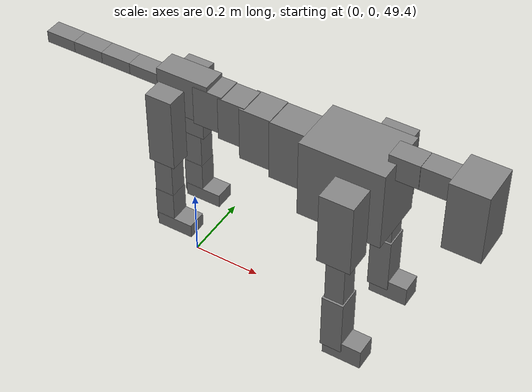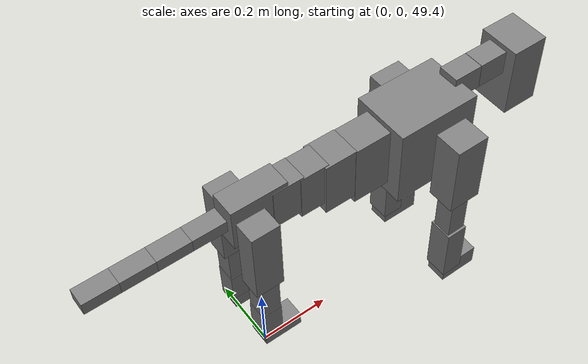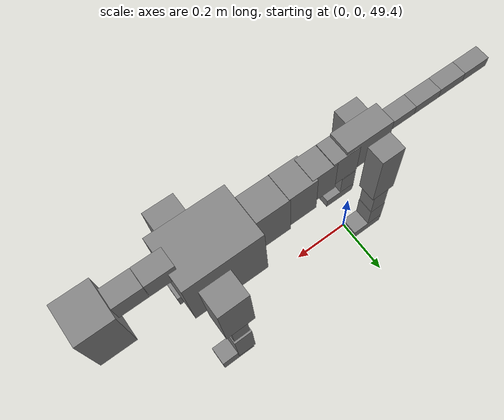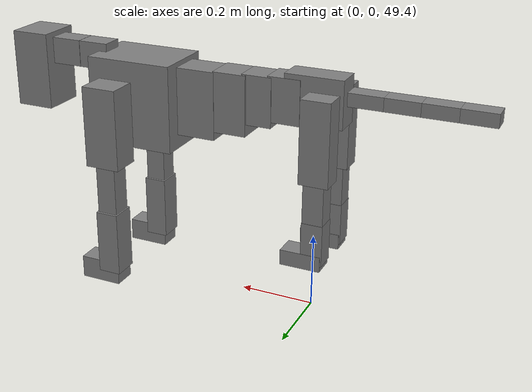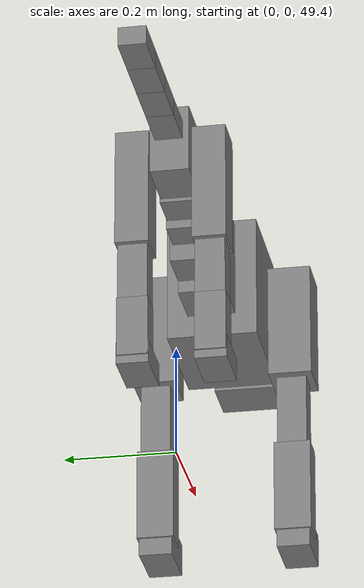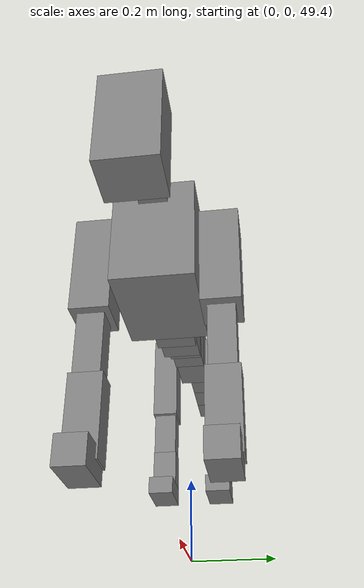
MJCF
<mujoco model="dog">

    <default>
        <joint armature="0.02" stiffness="1" damping="0.2" limited="true"/>
        <geom condim="3" friction="1 0.05 0.05" margin="0.01"/>
        <motor ctrllimited="true" ctrlrange="-1.0 1.0" forcelimited="true" gear="50"/>
    </default>

    <compiler inertiafromgeom="true" angle="radian"/>

    <option timestep="0.016" iterations="50" tolerance="1e-10" solver="Newton" jacobian="dense" cone="pyramidal"/>

    <size nconmax="20000" njmax="60000" nstack="5000000"/>
    <visual>
        <map force="0.1" zfar="30"/>
        <rgba haze="0.15 0.25 0.35 1"/>
        <quality shadowsize="2048"/>
        <global offwidth="800" offheight="800"/>
    </visual>

    <asset>
        <texture type="skybox" builtin="gradient" rgb1="0.3 0.5 0.7" rgb2="0 0 0" width="512" height="512"/>
        <texture name="texplane" type="2d" builtin="checker" rgb1=".2 .3 .4" rgb2=".1 0.15 0.2" width="512" height="512"
                 mark="cross" markrgb=".8 .8 .8"/>
        <texture name="texgeom" type="cube" builtin="flat" mark="cross" width="127" height="1278" rgb1="0.8 0.6 0.4"
                 rgb2="0.8 0.6 0.4" markrgb="1 1 1" random="0.01"/>

        <material name="matplane" reflectance="0.3" texture="texplane" texrepeat="1 1" texuniform="true"/>
        <material name="matgeom" texture="texgeom" texuniform="true" rgba="0.8 0.6 .4 1"/>
    </asset>

    <worldbody>
        <geom name="floor" pos="0 0 0" size="0 0 .25" type="plane" material="matplane" condim="3"/>

        <light directional="false" diffuse=".2 .2 .2" specular="0 0 0" pos="0 0 5" dir="0 0 -1" castshadow="false"/>
        <light mode="targetbodycom" target="torso" directional="false" diffuse=".8 .8 .8" specular="0.3 0.3 0.3"
               pos="0 0 4.0" dir="0 0 -1"/>

        <body name="root" pos="0 0 50">
            <freejoint name="root_1"/>
            <geom type="box" pos="0 0 -0.02" size="0.0774  0.0358  0.063" density="2030"/>

            <body name="spine1" pos="0.054 0 0">
                <joint name="spine1_y" axis="0 1 0" range="0 0.7" limited="true"/>
                <geom type="box" pos="0.02375 0 -0.03" size="0.04375  0.0375  0.05985" density="2030"/>

                <body name="spine2" pos="0.0612 0 0">
                    <joint name="spine2_y" axis="0 1 0" range="-0.15 0.15" limited="true"/>
                    <geom type="box" pos="0.03555  0  -0.04" size="0.04055  0.039  0.06615" density="2030"/>

                    <body name="spine3" pos="0.0730 0 0">
                        <joint name="spine3_y" axis="0 1 0" range="-0.15 0.15" limited="true"/>
                        <geom type="box" pos="0.03555  0  -0.057" size="0.04555  0.0445  0.081" density="2030"/>

                        <body name="spine4" pos="0.0780 0 0">
                            <joint name="spine4_y" axis="0 1 0" range="-0.15 0.15" limited="true"/>
                            <geom type="box" pos="0.05265  0  -0.07" size="0.05265  0.045  0.09135" density="2030"/>

                            <body name="torso" pos="0.1082 0 0">
                                <joint name="torso_y" axis="0 1 0" range="-0.15 0.15" limited="true"/>
                                <geom type="box" pos="0.11925  0  -0.085" size="0.11925  0.085  0.11745"
                                      density="2030"/>

                                <body name="neck1" pos="0.2160  0   0.0180">
                                    <joint name="neck1_y" axis="0 1 0" range="-1.2  -1" limited="true"/>
                                    <geom type="box" pos="0.0423  0  0" size="0.0423  0.03  0.036" density="2325"/>

                                    <body name="neck2" pos="0.0853  0  0">
                                        <joint name="neck2_y" axis="0 1 0" range="0.1  0" limited="true"/>
                                        <geom type="box" pos="0.0423  0  0" size="0.0423  0.03  0.036" density="2325"/>

                                        <body name="head" pos="0.0853  0  0">
                                            <joint name="head_y" axis="0 1 0" range="-0.3  -0.2" limited="true"/>
                                            <geom type="box" pos="0.0531  0  -0.055" size="0.0531  0.06  0.1044"
                                                  density="4030"/>

                                        </body>
                                    </body>
                                </body>

                                <body name="front_shoulder" pos="0.156  0   -0.0480">
                                    <joint name="front_shoulder_y" axis="0 1 0" range="-1 1.5" limited="true"/>
                                    <geom type="box" pos="0 0.13 -0.0827" size="0.0476  0.0407  0.1094" density="1158"/>
                                    <geom type="box" pos="0 -0.13 -0.0827" size="0.0476  0.0407  0.1094"
                                          density="1158"/>

                                    <body name="front_elbow" pos="0  0  -0.1654">
                                        <joint name="front_elbow_y" axis="0 1 0" range="-2 0" limited="true"/>
                                        <geom type="box" pos="0 0.13 -0.0868" size="0.0274  0.0280  0.0868"
                                              density="1081"/>
                                        <geom type="box" pos="0 -0.13 -0.0868" size="0.0274  0.0280  0.0868"
                                              density="1081"/>

                                        <body name="front_wrist" pos="0  0  -0.1736">
                                            <joint name="front_wrist_y" axis="0 1 0" range="-0.2 0" limited="true"/>
                                            <geom type="box" pos="0 0.13 -0.0744" size="0.0311  0.0345  0.0875"
                                                  density="1664"/>
                                            <geom type="box" pos="0 -0.13 -0.0744" size="0.0311  0.0345  0.0875"
                                                  density="1664"/>

                                            <body name="front_finger_end" pos="0  0  -0.1488">
                                                <joint name="front_finger_y" axis="0 1 0" range="-0.4 1"
                                                       limited="true"/>
                                                <geom type="box" pos="0.0309  0.13  -0.0157"
                                                      size="0.0566  0.0309  0.0307" density="1515"/>
                                                <geom type="box" pos="0.0309  -0.13  -0.0157"
                                                      size="0.0566  0.0309  0.0307" density="1515"/>

                                            </body>

                                        </body>
                                    </body>
                                </body>

                            </body>
                        </body>
                    </body>
                </body>
            </body>

            <body name="back_hip" pos="-0.03 0 -0.018">
                <joint name="back_hip_y" axis="0 1 0" range="-1.5 0.3" limited="true"/>
                <geom type="box" pos="0 0.07 -0.0869" size="0.0390  0.0306  0.1097" density="1154"/>
                <geom type="box" pos="0 -0.07 -0.0869" size="0.0390  0.0306  0.1097" density="1154"/>

                <body name="back_knee" pos="0  0  -0.1738">
                    <joint name="back_knee_y" axis="0 1 0" range="0 2.8" limited="true"/>
                    <geom type="box" pos="0 0.07 -0.0689" size="0.0273  0.0270  0.0845" density="1227"/>
                    <geom type="box" pos="0 -0.07 -0.0689" size="0.0273  0.0270  0.0845" density="1227"/>

                    <body name="back_ankle" pos="0  0  -0.1378">
                        <joint name="back_ankle_y" axis="0 1 0" range="-2.2 0" limited="true"/>
                        <geom type="box" pos="0 0.07 -0.0447" size="0.0282  0.0282  0.0559" density="1284"/>
                        <geom type="box" pos="0 -0.07 -0.0447" size="0.0282  0.0282  0.0559" density="1284"/>

                        <body name="back_toe_end" pos="0  0  -0.0894">
                            <joint name="back_toe_y" axis="0 1 0" range="-0.4 1" limited="true"/>
                            <geom type="box" pos="0.0293  0.07  -0.0057" size="0.0537  0.0293  0.0207" density="1515"/>
                            <geom type="box" pos="0.0293  -0.07  -0.0057" size="0.0537  0.0293  0.0207" density="1515"/>

                        </body>
                    </body>
                </body>
            </body>

            <body name="tail1" pos="-0.074 0 -0.006">
                <joint name="tail1_y" axis="0 1 0" range="-0.2 0.2" limited="true"/>
                <geom type="box" pos="-0.0536  0  0" size="0.045  0.025  0.0175" density="1587"/>

                <body name="tail2" pos="-0.09 0 0">
                    <joint name="tail2_y" axis="0 1 0" range="-0.2 0.2" limited="true"/>
                    <geom type="box" pos="-0.0536  0  0" size="0.045  0.025  0.0175" density="1587"/>

                    <body name="tail3" pos="-0.09 0 0">
                        <joint name="tail3_y" axis="0 1 0" range="-0.2 0.2" limited="true"/>
                        <geom type="box" pos="-0.0536  0  0" size="0.045  0.025  0.0175" density="1587"/>

                        <body name="tail4" pos="-0.09 0 0">
                            <joint name="tail4_y" axis="0 1 0" range="-0.2 0.2" limited="true"/>
                            <geom type="box" pos="-0.0536  0  0" size="0.045  0.025  0.0175" density="1587"/>

                        </body>
                    </body>
                </body>
            </body>
        </body>
    </worldbody>

    <actuator>
        <motor joint="spine1_y" forcerange="-150 150     "/>
        <motor joint="spine2_y" forcerange="-150 150     "/>
        <motor joint="spine3_y" forcerange="-150 150     "/>
        <motor joint="spine4_y" forcerange="-150 150     "/>
        <motor joint="torso_y" forcerange="-150 150     "/>
        <motor joint="neck1_y" forcerange="-100 100       "/>
        <motor joint="neck2_y" forcerange="-100 100       "/>
        <motor joint="head_y" forcerange="-150 150       "/>
        <motor joint="front_shoulder_y" forcerange="-194.84 176.60"/>
        <motor joint="front_elbow_y" forcerange="-153.49 149.94"/>
        <motor joint="front_wrist_y" forcerange="-149.98 126.04"/>
        <motor joint="front_finger_y" forcerange="-96.15 28.47"/>
        <motor joint="back_hip_y" forcerange="-345.89 261.99"/>
        <motor joint="back_knee_y" forcerange="-352.13 239.91"/>
        <motor joint="back_angle_y" forcerange="-104.43 246.83"/>
        <motor joint="back_toe_y" forcerange="-89.73 64.64"/>
        <motor joint="tail1_y" forcerange="-50 50     "/>
        <motor joint="tail2_y" forcerange="-50 50     "/>
        <motor joint="tail3_y" forcerange="-50 50     "/>
        <motor joint="tail4_y" forcerange="-50 50     "/>
    </actuator>
</mujoco>
